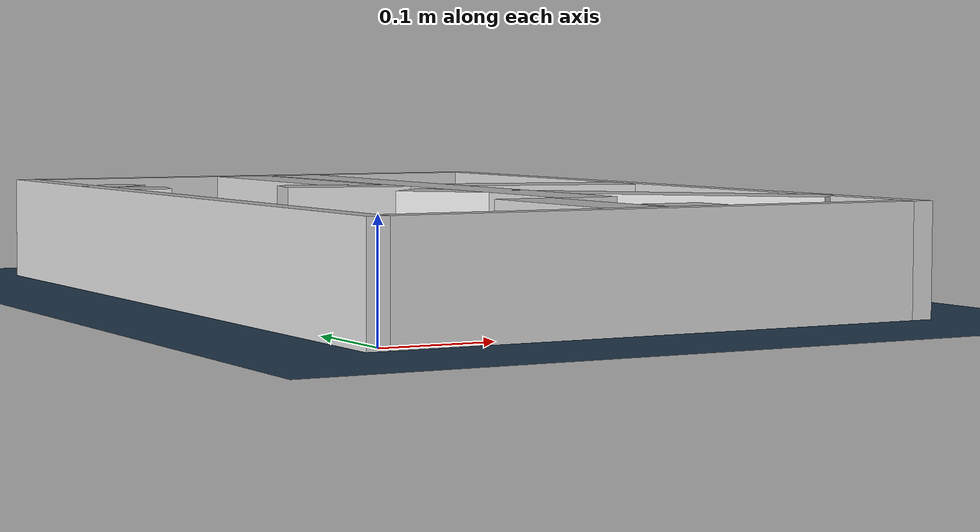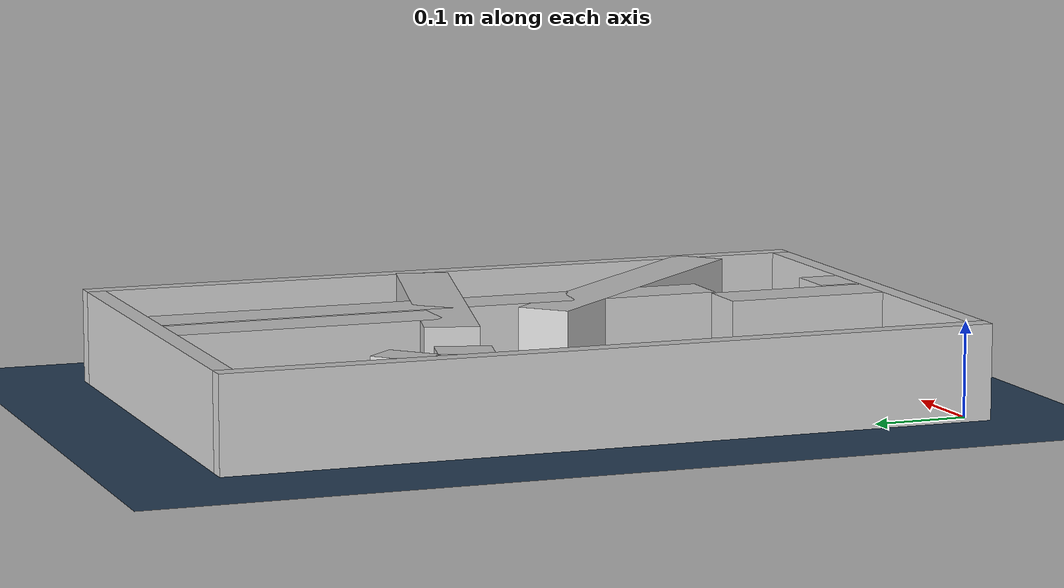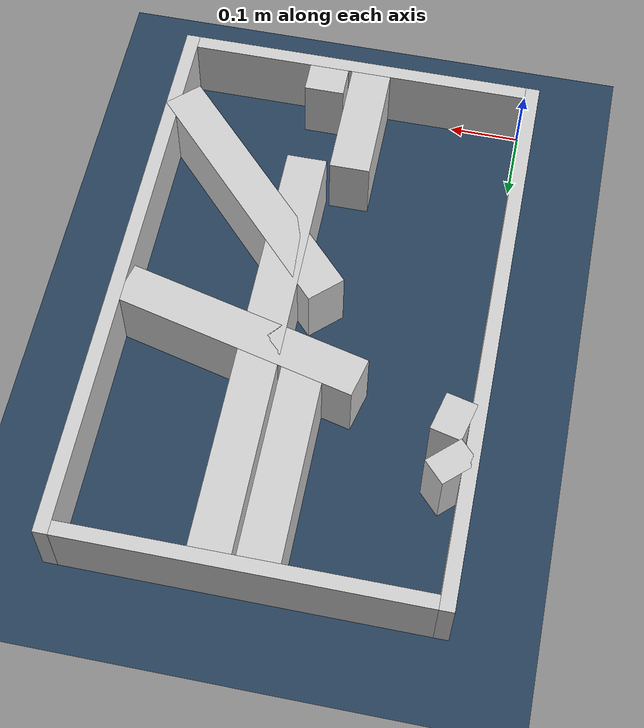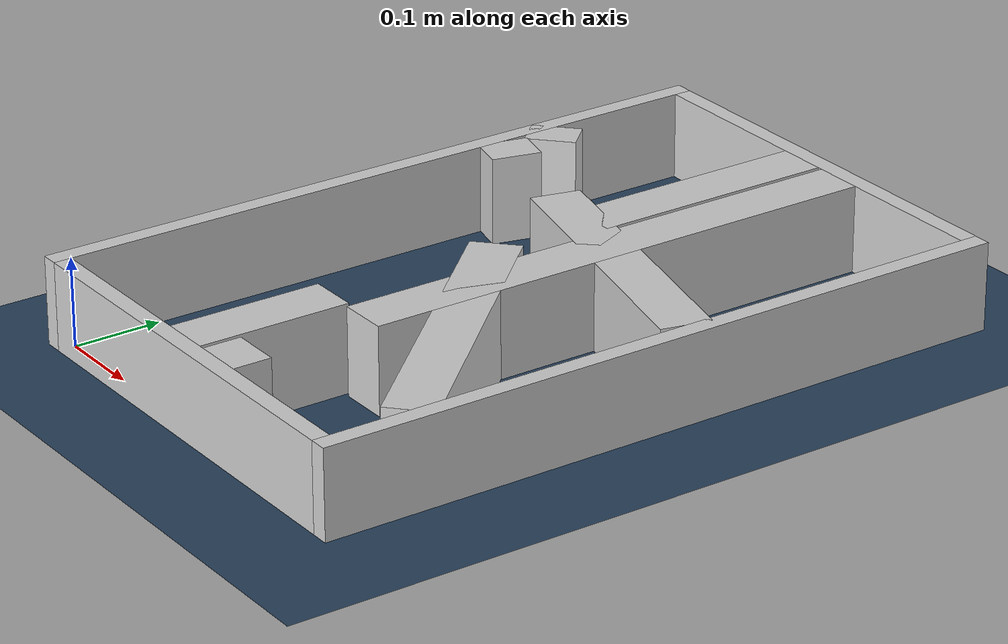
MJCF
<?xml version="1.0" ?>
<mujoco model="generated_real_template">
  <compiler angle="degree"/>
  <option timestep="0.002" integrator="implicitfast" iterations="100" cone="elliptic"/>
  <default>
    <geom density="1"/>
  </default>
  <asset>
    <texture builtin="gradient" height="3072" rgb1="0.3 0.5 0.7" rgb2="0 0 0" type="skybox" width="512"/>
    <texture builtin="checker" height="300" mark="edge" markrgb="0.8 0.8 0.8" name="groundplane" rgb1="0.2 0.3 0.4" rgb2="0.1 0.2 0.3" type="2d" width="300"/>
    <material name="groundplane" reflectance="0.2" texrepeat="5 5" texture="groundplane" texuniform="true"/>
  </asset>
  <worldbody>
    <light dir="0 0 -1" directional="true" pos="0 0 1.5"/>
    <geom name="floor" type="plane" condim="4" friction="0.5 0.005 0.001" material="groundplane" size="0 0 0.05"/>
    <body name="walls">
      <geom name="wall_boundary_left" type="box" condim="4" friction="1.0 0.005 0.0001" rgba="0.8 0.8 0.8 1" pos="-0.010000 0.387500 0.050000" euler="0 0 0.000000" size="0.010000 0.407500 0.050000"/>
      <geom name="wall_boundary_right" type="box" condim="4" friction="1.0 0.005 0.0001" rgba="0.8 0.8 0.8 1" pos="0.500000 0.387500 0.050000" euler="0 0 0.000000" size="0.010000 0.407500 0.050000"/>
      <geom name="wall_boundary_bottom" type="box" condim="4" friction="1.0 0.005 0.0001" rgba="0.8 0.8 0.8 1" pos="0.245000 -0.010000 0.050000" euler="0 0 0.000000" size="0.245000 0.010000 0.050000"/>
      <geom name="wall_boundary_top" type="box" condim="4" friction="1.0 0.005 0.0001" rgba="0.8 0.8 0.8 1" pos="0.245000 0.785000 0.050000" euler="0 0 0.000000" size="0.245000 0.010000 0.050000"/>
      <geom name="wall_inner_1_1" type="box" condim="4" friction="1.0 0.005 0.0001" rgba="0.8 0.8 0.8 1" pos="0.289122 0.021766 0.050000" euler="0 0 90.000000" size="0.021766 0.028500 0.050000"/>
      <geom name="wall_inner_1_2" type="box" condim="4" friction="1.0 0.005 0.0001" rgba="0.8 0.8 0.8 1" pos="0.289122 0.471220 0.050000" euler="0 0 90.000000" size="0.303780 0.028500 0.050000"/>
      <geom name="wall_inner_2_1" type="box" condim="4" friction="1.0 0.005 0.0001" rgba="0.8 0.8 0.8 1" pos="0.021397 0.533087 0.050000" euler="0 0 -13.657935" size="0.022020 0.028500 0.050000"/>
      <geom name="wall_inner_2_2" type="box" condim="4" friction="1.0 0.005 0.0001" rgba="0.8 0.8 0.8 1" pos="0.320229 0.460472 0.050000" euler="0 0 -13.657935" size="0.174711 0.028500 0.050000"/>
      <geom name="wall_inner_3_1" type="box" condim="4" friction="1.0 0.005 0.0001" rgba="0.8 0.8 0.8 1" pos="0.354575 0.234092 0.050000" euler="0 0 133.167379" size="0.196801 0.028500 0.050000"/>
      <geom name="wall_inner_3_2" type="box" condim="4" friction="1.0 0.005 0.0001" rgba="0.8 0.8 0.8 1" pos="0.014373 0.596783 0.050000" euler="0 0 133.167379" size="0.019858 0.028500 0.050000"/>
      <geom name="wall_inner_4_1" type="box" condim="4" friction="1.0 0.005 0.0001" rgba="0.8 0.8 0.8 1" pos="0.226771 0.086725 0.050000" euler="0 0 90.000000" size="0.086725 0.028500 0.050000"/>
      <geom name="wall_inner_4_2" type="box" condim="4" friction="1.0 0.005 0.0001" rgba="0.8 0.8 0.8 1" pos="0.226771 0.634188 0.050000" euler="0 0 90.000000" size="0.140812 0.028500 0.050000"/>
    </body>
  </worldbody>
</mujoco>
